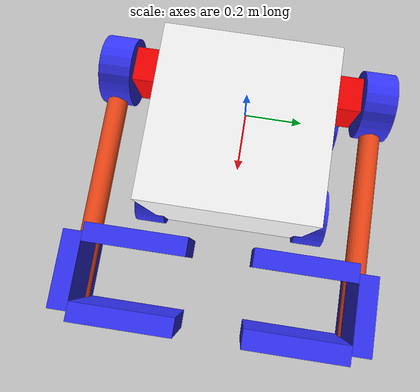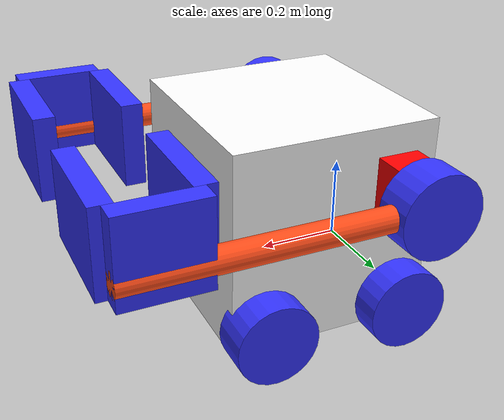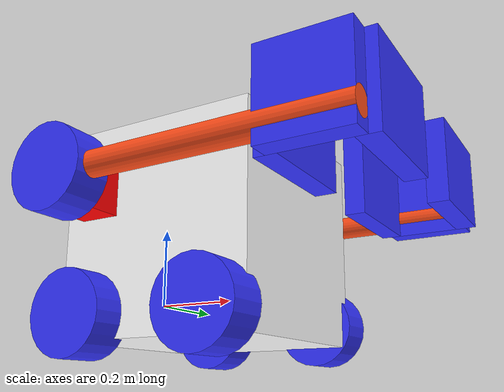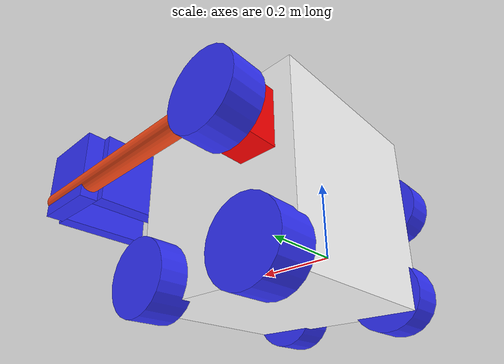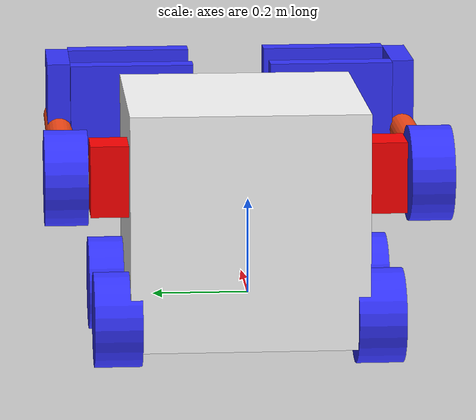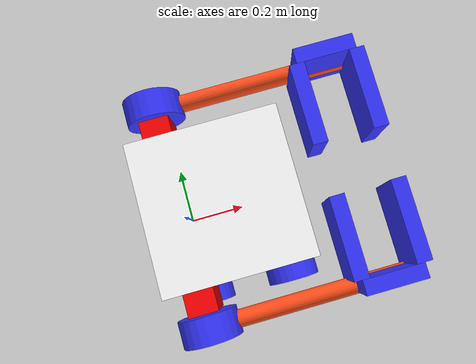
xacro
<?xml version="1.0"?>
<robot xmlns:xacro="http://www.ros.org/wiki/xacro" >
    <xacro:include filename="inertial_macros.xacro" />

    <material name="white">
        <color rgba="1 1 1 1" />
    </material>

    <material name="orange">
        <color rgba="1 0.3 0.1 1"/>
    </material>

    <material name="blue">
        <color rgba="0.2 0.2 1 1"/>
    </material>

    <material name="black">
        <color rgba="0 0 0 1"/>
    </material>

    <material name="red">
        <color rgba="1 0 0 1"/>
    </material>

    <!-- BASE LINK -->

    <link name="base_link">

    </link>
    <joint name="chassis_joint" type="fixed">
        <parent link="base_link"/>
        <child link="chassis"/>
        <origin xyz="-0.1 0 0"/>
    </joint>
    <link name="chassis">
        <visual>
            <origin xyz="0.25 0 0.145" rpy="0 0 0"/>
            <geometry>
                <box size="0.5 0.5 0.5"/>
            </geometry>
            <material name="white"/>
        </visual>
        <collision>
            <origin xyz="0.25 0 0.145" rpy="0 0 0"/>
            <geometry>
                <box size="0.5 0.5 0.5"/>
            </geometry>
        </collision>
        <xacro:inertial_box mass="0.8" x="0.5" y="0.5" z="0.5">
            <origin xyz="0.25 0 0.145" rpy="0 0 0"/>
        </xacro:inertial_box>
    </link>
    <gazebo reference="chassis">
        <material>Gazebo/White</material>
    </gazebo>
    <!-- LEFT WHEEL -->
    <joint name="front_left_wheel_joint" type="continuous">
        <parent link="base_link"/>
        <child link="front_left_wheel"/>
        <origin xyz="0.32 0.275 -0.05" rpy="-${pi/2} 0 0"/>
        <axis xyz="0 0 1"/>
    </joint>
    <link name="front_left_wheel">
        <visual>
            <geometry>
                <cylinder length="0.1" radius="0.1" />
            </geometry>
            <material name="blue"/>
        </visual>
        <collision>
            <geometry>
                <cylinder radius="0.1" length="0.1"/>
            </geometry>
        </collision>
        <xacro:inertial_cylinder mass="0.2" length="0.11" radius="0.1">
            <origin xyz="0 0 0" rpy="0 0 0"/>
        </xacro:inertial_cylinder>
    </link>
    <gazebo reference="front_left_wheel">
        <material>Gazebo/Blue</material>
    </gazebo>

    <joint name="back_left_wheel_joint" type="continuous">
        <parent link="base_link"/>
        <child link="back_left_wheel"/>
        <origin xyz="-0.02 0.275 -0.05" rpy="-${pi/2} 0 0"/>
        <axis xyz="0 0 1"/>
    </joint>
    <link name="back_left_wheel">
        <visual>
            <geometry>
                <cylinder length="0.1" radius="0.1" />
            </geometry>
            <material name="blue"/>
        </visual>
        <collision>
            <geometry>
                <cylinder radius="0.1" length="0.1"/>
            </geometry>
        </collision>
        <xacro:inertial_cylinder mass="1" length="0.11" radius="0.1">
            <origin xyz="0 0 0" rpy="0 0 0"/>
        </xacro:inertial_cylinder>
    </link>
    <gazebo reference="back_left_wheel">
        <material>Gazebo/Blue</material>
    </gazebo>

    <!-- RIGHT WHEEL -->
    <joint name="front_right_wheel_joint" type="continuous">
        <parent link="base_link"/>
        <child link="front_right_wheel"/>
        <origin xyz="0.32 -0.275 -0.05" rpy="${pi/2} 0 0"/>
        <axis xyz="0 0 -1"/>
    </joint>

    <link name="front_right_wheel">
        <visual>
            <geometry>
                <cylinder length="0.1" radius="0.1" />
            </geometry>
            <material name="blue"/>
        </visual>
        <collision>
            <geometry>
                <cylinder radius="0.1" length="0.1"/>
            </geometry>
        </collision>
        <xacro:inertial_cylinder mass="0.2" length="0.11" radius="0.1">
            <origin xyz="0 0 0" rpy="0 0 0"/>
        </xacro:inertial_cylinder>
    </link>
    <gazebo reference="front_right_wheel">
        <material>Gazebo/Blue</material>
    </gazebo>

    <joint name="back_right_wheel_joint" type="continuous">
        <parent link="base_link"/>
        <child link="back_right_wheel"/>
        <origin xyz="-0.02 -0.275 -0.05" rpy="${pi/2} 0 0"/>
        <axis xyz="0 0 -1"/>
    </joint>

    <link name="back_right_wheel">
        <visual>
            <geometry>
                <cylinder length="0.1" radius="0.1" />
            </geometry>
            <material name="blue"/>
        </visual>
        <collision>
            <geometry>
                <cylinder radius="0.1" length="0.1"/>
            </geometry>
        </collision>
        <xacro:inertial_cylinder mass="1" length="0.11" radius="0.1">
            <origin xyz="0 0 0" rpy="0 0 0"/>
        </xacro:inertial_cylinder>
    </link>
    <gazebo reference="back_right_wheel">
        <material>Gazebo/Blue</material>
    </gazebo>

    <!-- Robo ARM -->

    <link name="slider_link_first">
        <visual>
            <origin xyz="0 0 0" rpy="0 0 0"/>
            <geometry>
                <box size="0.1 0.1 0.15" />
            </geometry>
            <material name="red" />
        </visual>
        <collision>
            <origin xyz="0 0 0" rpy="0 0 0"/>
            <geometry>
                <box size="0.2 0.25 0.15" />
            </geometry>
        </collision>
        <xacro:inertial_box mass="0.5" x="0.5" y="0.25" z="0.15">
            <origin xyz="0 0 0.075" rpy="0 0 0"/>
        </xacro:inertial_box>
    </link>

    <joint name="slider_joint_first" type="prismatic">
        <origin xyz="0 0.28 0.25" rpy="0 0 0"/>
        <parent link="base_link"/>
        <child link="slider_link_first"/>
        <axis xyz="1 0 0"/>
        <limit lower="0.2" upper="0" velocity="100" effort="100"/>
    </joint>
    <gazebo reference="slider_link_first">
        <material>Gazebo/red</material>
    </gazebo>
    <link name="slider_link_second">
        <visual>
            <origin xyz="0 0 0" rpy="0 0 0"/>
            <geometry>
                <box size="0.1 0.1 0.15" />
            </geometry>
            <material name="red" />
        </visual>
        <collision>
            <origin xyz="0 0 0" rpy="0 0 0"/>
            <geometry>
                <box size="0.2 0.25 0.15" />
            </geometry>
        </collision>
        <xacro:inertial_box mass="0.5" x="0.5" y="0.25" z="0.15">
            <origin xyz="0 0 0.075" rpy="0 0 0"/>
        </xacro:inertial_box>
    </link>
    <joint name="slider_joint_second" type="prismatic">
        <origin xyz="0 -0.28 0.25" rpy="0 0 0"/>
        <parent link="base_link"/>
        <child link="slider_link_second"/>
        <axis xyz="1 0 0"/>
        <limit lower="0.2" upper="0" velocity="100" effort="100"/>
    </joint>
    <gazebo reference="slider_link_second">
        <material>Gazebo/red</material>
    </gazebo>

    <joint name="I_colckwork_joint" type="revolute">
        <parent link="slider_link_first"/>
        <child link="I_colckwork"/>
        <origin xyz="0 0.1 0" rpy="${pi/2} 0 0"/>
        <axis xyz="0 0 -1"/>
        <limit lower="0" upper="0.4" velocity="100" effort="100"/>
    </joint>

    <link name="I_colckwork">
        <visual>
            <geometry>
                <cylinder length="0.09" radius="0.1" />
            </geometry>
            <material name="blue"/>
        </visual>
        <collision>
            <geometry>
                <cylinder radius="0.1" length="0.09"/>
            </geometry>
        </collision>
        <xacro:inertial_cylinder mass="0.1" length="0.1" radius="0.1">
            <origin xyz="0 0 0" rpy="0 0 0"/>
        </xacro:inertial_cylinder>
    </link>
    <gazebo reference="I_colckwork">
        <material>Gazebo/Blue</material>
    </gazebo>

    <joint name="II_colckwork_joint" type="revolute">
        <parent link="slider_link_second"/>
        <child link="II_colckwork"/>
        <origin xyz="0 -0.1 0" rpy="${pi/2} 0 0"/>
        <axis xyz="0 0 -1"/>
        <limit lower="0" upper="0.4" velocity="100" effort="100"/>
    </joint>

    <link name="II_colckwork">
        <visual>
            <geometry>
                <cylinder length="0.09" radius="0.1" />
            </geometry>
            <material name="blue"/>
        </visual>
        <collision>
            <geometry>
                <cylinder radius="0.1" length="0.09"/>
            </geometry>
        </collision>
        <xacro:inertial_cylinder mass="0.1" length="0.1" radius="0.1">
            <origin xyz="0 0 0" rpy="0 0 0"/>
        </xacro:inertial_cylinder>
    </link>
    <gazebo reference="II_colckwork">
        <material>Gazebo/Blue</material>
    </gazebo>

    <joint name="I_arm_joint" type="revolute">
        <origin xyz="0 0 0" rpy="0 0 0"/>
        <parent link="I_colckwork"/>
        <child link="I_arm"/>
        <axis xyz="0 -1 0"/>
        <limit lower="-0.33" upper="0.27" velocity="100" effort="100"/>
    </joint>

    <xacro:property name="arm_length" value="0.7" />
    <xacro:property name="arm_radius" value="0.03" />
    <link name="I_arm">
        <visual>
            <origin xyz="${arm_length/2} 0 0" rpy="0 ${pi/2} 0"/>
            <geometry>
                <cylinder length="${arm_length}" radius="${arm_radius}" />
            </geometry>
            <material name="orange" />
        </visual>
        <collision>
            <origin xyz="${arm_length/2} 0 0" rpy="0 ${pi/2} 0"/>
            <geometry>
                <cylinder length="${arm_length}" radius="${arm_radius}" />
            </geometry>
        </collision>
        <xacro:inertial_cylinder mass="0.1" length="${arm_length}" radius="${arm_radius}">
            <origin xyz="${arm_length/2} 0 0" rpy="0 ${pi/2} 0"/>
        </xacro:inertial_cylinder>
    </link>

    <joint name="II_arm_joint" type="revolute">
        <origin xyz="0 0 0" rpy="0 0 0"/>
        <parent link="II_colckwork"/>
        <child link="II_arm"/>
        <axis xyz="0 -1 0"/>
        <limit lower="0.33" upper="-0.27" velocity="100" effort="100"/>
    </joint>

    <xacro:property name="arm_length" value="0.7" />
    <xacro:property name="arm_radius" value="0.03" />
    <link name="II_arm">
        <visual>
            <origin xyz="${arm_length/2} 0 0" rpy="0 ${pi/2} 0"/>
            <geometry>
                <cylinder length="${arm_length}" radius="${arm_radius}" />
            </geometry>
            <material name="orange" />
        </visual>
        <collision>
            <origin xyz="${arm_length/2} 0 0" rpy="0 ${pi/2} 0"/>
            <geometry>
                <cylinder length="${arm_length}" radius="${arm_radius}" />
            </geometry>
        </collision>
        <xacro:inertial_cylinder mass="0.1" length="${arm_length}" radius="${arm_radius}">
            <origin xyz="${arm_length/2} 0 0" rpy="0 ${pi/2} 0"/>
        </xacro:inertial_cylinder>
    </link>

    <joint name="I_finger_joint" type="fixed">
        <parent link="I_arm"/>
        <child link="I_finger"/>
        <origin xyz="-0.1 0 0"/>
    </joint>
    <link name="I_finger">
        <visual>
            <origin xyz="0.6 0.05 0.16" rpy="0 0 0"/>
            <geometry>
                <box size="0.05 0.2 0.27"/>
            </geometry>
            <material name="blue"/>
        </visual>
        <collision>
            <origin xyz="0.6 0.05 0.16" rpy="0 0 0"/>
            <geometry>
                <box size="0.05 0.2 0.27"/>
            </geometry>
        </collision>
        <xacro:inertial_box mass="0.01" x="0.05" y="0.2" z="0.27">
            <origin xyz="0.6 0.05 0.16" rpy="0 0 0"/>
        </xacro:inertial_box>
    </link>
    <gazebo reference="I_finger">
        <material>Gazebo/blue</material>
    </gazebo>

    <joint name="II_finger_joint" type="fixed">
        <parent link="II_arm"/>
        <child link="II_finger"/>
        <origin xyz="-0.1 0 0"/>
    </joint>
    <link name="II_finger">
        <visual>
            <origin xyz="0.6 0.05 -0.16" rpy="0 0 0"/>
            <geometry>
                <box size="0.05 0.2 0.27"/>
            </geometry>
            <material name="blue"/>
        </visual>
        <collision>
            <origin xyz="0.6 0.05 -0.16" rpy="0 0 0"/>
            <geometry>
                <box size="0.05 0.2 0.27"/>
            </geometry>
        </collision>
        <xacro:inertial_box mass="0.01" x="0.05" y="0.2" z="0.27">
            <origin xyz="0.6 0.05 -0.16" rpy="0 0 0"/>
        </xacro:inertial_box>
    </link>
    <gazebo reference="II_finger">
        <material>Gazebo/blue</material>
    </gazebo>

    <joint name="I_finger_I_joint" type="fixed">
        <parent link="I_arm"/>
        <child link="I_finger_I"/>
        <origin xyz="-0.1 0 0"/>
    </joint>
    <link name="I_finger_I">
        <visual>
            <origin xyz="0.8 0.05 0.16" rpy="0 0 0"/>
            <geometry>
                <box size="0.05 0.2 0.27"/>
            </geometry>
            <material name="blue"/>
        </visual>
        <collision>
            <origin xyz="0.8 0.05 0.16" rpy="0 0 0"/>
            <geometry>
                <box size="0.05 0.2 0.27"/>
            </geometry>
        </collision>
        <xacro:inertial_box mass="0.01" x="0.05" y="0.2" z="0.27">
            <origin xyz="0.8 0.05 0.16" rpy="0 0 0"/>
        </xacro:inertial_box>
    </link>
    <gazebo reference="I_finger_I">
        <material>Gazebo/blue</material>
    </gazebo>

    <joint name="II_finger_II_joint" type="fixed">
        <parent link="II_arm"/>
        <child link="II_finger_II"/>
        <origin xyz="-0.1 0 0"/>
    </joint>
    <link name="II_finger_II">
        <visual>
            <origin xyz="0.8 0.05 -0.16" rpy="0 0 0"/>
            <geometry>
                <box size="0.05 0.2 0.27"/>
            </geometry>
            <material name="blue"/>
        </visual>
        <collision>
            <origin xyz="0.8 0.05 -0.16" rpy="0 0 0"/>
            <geometry>
                <box size="0.05 0.2 0.27"/>
            </geometry>
        </collision>
        <xacro:inertial_box mass="0.01" x="0.05" y="0.2" z="0.27">
            <origin xyz="0.8 0.05 -0.16" rpy="0 0 0"/>
        </xacro:inertial_box>
    </link>
    <gazebo reference="II_finger_II">
        <material>Gazebo/blue</material>
    </gazebo>

    <joint name="I_Thub_joint" type="fixed">
        <parent link="I_arm"/>
        <child link="I_Thub"/>
        <origin xyz="-0.1 0 0"/>
    </joint>
    <link name="I_Thub">
        <visual>
            <origin xyz="0.7 0.05 0" rpy="0 0 0"/>
            <geometry>
                <box size="0.2 0.2 0.05"/>
            </geometry>
            <material name="blue"/>
        </visual>
        <collision>
            <origin xyz="0.7 0.05 0" rpy="0 0 0"/>
            <geometry>
                <box size="0.2 0.2 0.05"/>
            </geometry>
        </collision>
        <xacro:inertial_box mass="0.01" x="0.2" y="0.2" z="0.05">
            <origin xyz="0.7 0.05 0" rpy="0 0 0"/>
        </xacro:inertial_box>
    </link>
    <gazebo reference="I_Thub">
        <material>Gazebo/blue</material>
    </gazebo>

    <joint name="II_Thub_joint" type="fixed">
        <parent link="II_arm"/>
        <child link="II_Thub"/>
        <origin xyz="-0.1 0 0"/>
    </joint>
    <link name="II_Thub">
        <visual>
            <origin xyz="0.7 0.05 0" rpy="0 0 0"/>
            <geometry>
                <box size="0.2 0.2 0.05"/>
            </geometry>
            <material name="blue"/>
        </visual>
        <collision>
            <origin xyz="0.7 -0.05 0" rpy="0 0 0"/>
            <geometry>
                <box size="0.2 0.2 0.05"/>
            </geometry>
        </collision>
        <xacro:inertial_box mass="0.01" x="0.2" y="0.2" z="0.05">
            <origin xyz="0.7 -0.05 0" rpy="0 0 0"/>
        </xacro:inertial_box>
    </link>
    <gazebo reference="II_Thub">
        <material>Gazebo/blue</material>
    </gazebo>

</robot>
